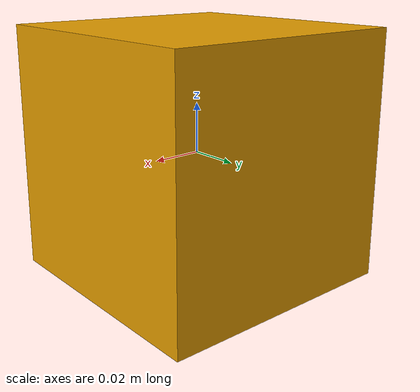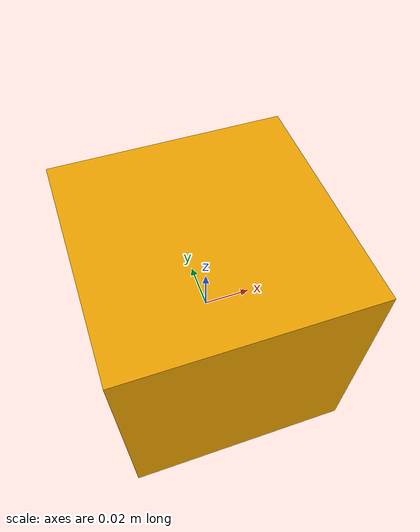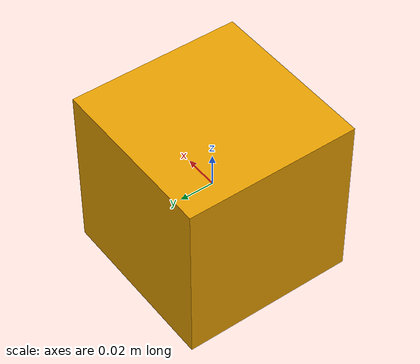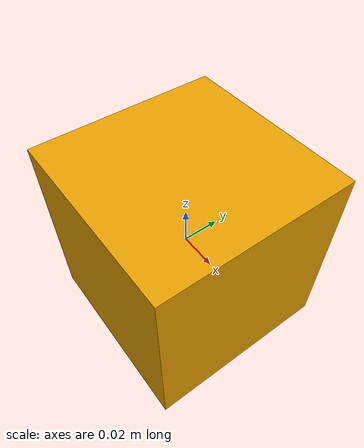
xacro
<?xml version="1.0"?>
<robot name="lio" xmlns:xacro="http://tixiaoshan.github.io/">
  <xacro:property name="PI" value="3.1415926535897931" />

  <link name="chassis_link">
   <visual>
        <geometry>
            <box size="0.1 0.1 0.1"/>
        </geometry>
        <origin xyz="0 0 0" rpy="0 0 0"/>
    </visual>

    <collision>
        <geometry>
            <box size="0.1 0.1 0.1"/>
        </geometry>
        <origin xyz="0.05 0 0.05" rpy="0 0 0"/>
    </collision>

    <inertial>
      <mass value="12"/>
      <inertia ixx="0.25" ixy="0.0" ixz="0.0" iyy="0.34" iyz="0.0" izz="0.41"/>
      <origin xyz="0.05 0 0.05" rpy="0 0 0"/>
    </inertial>

  </link>

  <link name="lio_base_link">
     <visual>
        <geometry>
            <box size="0.1 0.1 0.1"/>
        </geometry>
        <origin xyz="0 0 0" rpy="0 0 0"/>
    </visual>

    <collision>
        <geometry>
            <box size="0.1 0.1 0.1"/>
        </geometry>
        <origin xyz="0.05 0 0.05" rpy="0 0 0"/>
    </collision>

    <inertial>
      <mass value="12"/>
      <inertia ixx="0.25" ixy="0.0" ixz="0.0" iyy="0.34" iyz="0.0" izz="0.41"/>
      <origin xyz="0.05 0 0.05" rpy="0 0 0"/>
    </inertial>
  </link>

  <link name="base_footprint">
  </link>
  <joint name="base_footprint_joint" type="fixed">
      <parent link="base_footprint"/>
      <child link="lio_base_link" />
      <origin xyz="0 0 0" rpy="0 0 0" />
    </joint>

  <joint name="lio_base_link_joint" type="fixed">
    <parent link="lio_base_link"/>
    <child link="chassis_link" />
    <origin xyz="0 0 0" rpy="0 0 0" />
  </joint>

  <link name="lidar_link">
     <visual>
        <geometry>
            <box size="0.1 0.1 0.1"/>
        </geometry>
        <origin xyz="0 0 0" rpy="0 0 0"/>
    </visual>

    <collision>
        <geometry>
            <box size="0.1 0.1 0.1"/>
        </geometry>
        <origin xyz="0.05 0 0.05" rpy="0 0 0"/>
    </collision>

    <inertial>
      <mass value="12"/>
      <inertia ixx="0.25" ixy="0.0" ixz="0.0" iyy="0.34" iyz="0.0" izz="0.41"/>
      <origin xyz="0.05 0 0.05" rpy="0 0 0"/>
    </inertial>
  </link>

  <joint name="lidar_joint" type="fixed">
    <parent link="lio_base_link" />
    <child link="lidar_link" />
    <origin xyz="0 0 0" rpy="0 0 0" />
  </joint>

  <link name="imu_link">
     <visual>
        <geometry>
            <box size="0.1 0.1 0.1"/>
        </geometry>
        <origin xyz="0 0 0" rpy="0 0 0"/>
    </visual>

    <collision>
        <geometry>
            <box size="0.1 0.1 0.1"/>
        </geometry>
        <origin xyz="0.05 0 0.05" rpy="0 0 0"/>
    </collision>

    <inertial>
      <mass value="12"/>
      <inertia ixx="0.25" ixy="0.0" ixz="0.0" iyy="0.34" iyz="0.0" izz="0.41"/>
      <origin xyz="0.05 0 0.05" rpy="0 0 0"/>
    </inertial>
   </link>

  <joint name="imu_joint" type="fixed">
    <parent link="chassis_link" />
    <child link="imu_link" />
    <origin xyz="0 0 0" rpy="0 0 0" />
  </joint>

  <link name="laser_sensor_frame">
     <visual>
        <geometry>
            <box size="0.1 0.1 0.1"/>
        </geometry>
        <origin xyz="0 0 0" rpy="0 0 0"/>
    </visual>

    <collision>
        <geometry>
            <box size="0.1 0.1 0.1"/>
        </geometry>
        <origin xyz="0.05 0 0.05" rpy="0 0 0"/>
    </collision>

    <inertial>
      <mass value="12"/>
      <inertia ixx="0.25" ixy="0.0" ixz="0.0" iyy="0.34" iyz="0.0" izz="0.41"/>
      <origin xyz="0.05 0 0.05" rpy="0 0 0"/>
    </inertial>
  </link>

  <joint name="laser_joint" type="fixed">
    <parent link="imu_link" />
    <child link="laser_sensor_frame" />
    <origin xyz="0 0 0" rpy="0 0 0" />
  </joint>

  <link name="navsat_link">
     <visual>
        <geometry>
            <box size="0.1 0.1 0.1"/>
        </geometry>
        <origin xyz="0 0 0" rpy="0 0 0"/>
    </visual>

    <collision>
        <geometry>
            <box size="0.1 0.1 0.1"/>
        </geometry>
        <origin xyz="0.05 0 0.05" rpy="0 0 0"/>
    </collision>

    <inertial>
      <mass value="12"/>
      <inertia ixx="0.25" ixy="0.0" ixz="0.0" iyy="0.34" iyz="0.0" izz="0.41"/>
      <origin xyz="0.05 0 0.05" rpy="0 0 0"/>
    </inertial>
   </link>

  <joint name="navsat_joint" type="fixed">
    <parent link="chassis_link" />
    <child link="navsat_link" />
    <origin xyz="0 0 0" rpy="0 0 0" />
  </joint>

  <gazebo reference="lidar_link">
    <sensor type="gpu_lidar" name="generic_lidar_sensor">

      <topic>/lzm/scan</topic>
      <frame_id>lidar_link</frame_id>
      <ignition_frame_id>lidar_link</ignition_frame_id>

      <update_rate>15.0</update_rate>
      <ray>
        <scan>
          <horizontal>
            <samples>270</samples>
            <resolution>1</resolution>
            <min_angle>-${pi*0.75}</min_angle>
            <max_angle>${pi*0.75}</max_angle>
          </horizontal>
        </scan>
        <range>
          <min>0.10</min>
          <max>8.0</max>
          <resolution>0.06</resolution>
        </range>
        <noise>
          <type>gaussian</type>
          <mean>0.0</mean>
          <stddev>0.02</stddev>
        </noise>
      </ray>
      <always_on>1</always_on>
      <visualize>true</visualize>
    </sensor>
  </gazebo>
  <gazebo>
    <plugin filename="libignition-gazebo-sensors-system.so" name="ignition::gazebo::systems::Sensors">
      <render_engine>ogre2</render_engine>
    </plugin>
  </gazebo>

  <gazebo reference="lio_base_link">
    <sensor name="imu_sensor" type="imu">
      <topic>/lzm/imu</topic>
      <frame_id>lio_base_link</frame_id>
      <ignition_frame_id>lio_base_link</ignition_frame_id>
      <plugin filename="libignition-gazebo-imu-system.so" name="ignition::gazebo::systems::Imu">
        <initial_orientation_as_reference>false</initial_orientation_as_reference>
      </plugin>
      <always_on>true</always_on>
      <update_rate>100</update_rate>
      <visualize>true</visualize>
     <imu>
     	<angular_velocity>
     	  <x>
     	    <noise type="gaussian">
              <mean>0.0</mean>
              <stddev>2e-4</stddev>
              <bias_mean>0.0000075</bias_mean>
              <bias_stddev>0.0000008</bias_stddev>
            </noise>
          </x>
          <y>
            <noise type="gaussian">
              <mean>0.0</mean>
              <stddev>2e-4</stddev>
              <bias_mean>0.0000075</bias_mean>
              <bias_stddev>0.0000008</bias_stddev>
            </noise>
          </y>
          <z>
            <noise type="gaussian">
              <mean>0.0</mean>
              <stddev>2e-4</stddev>
              <bias_mean>0.0000075</bias_mean>
              <bias_stddev>0.0000008</bias_stddev>
            </noise>
          </z>
        </angular_velocity>
        <linear_acceleration>
          <x>
            <noise type="gaussian">
              <mean>0.0</mean>
              <stddev>1.7e-2</stddev>
              <bias_mean>0.1</bias_mean>
              <bias_stddev>0.001</bias_stddev>
            </noise>
          </x>
          <y>
            <noise type="gaussian">
              <mean>0.0</mean>
              <stddev>1.7e-2</stddev>
              <bias_mean>0.1</bias_mean>
              <bias_stddev>0.001</bias_stddev>
            </noise>
          </y>
          <z>
            <noise type="gaussian">
              <mean>0.0</mean>
              <stddev>1.7e-2</stddev>
              <bias_mean>0.1</bias_mean>
              <bias_stddev>0.001</bias_stddev>
            </noise>
          </z>
        </linear_acceleration>
      </imu>
    </sensor>
  </gazebo>

</robot>
